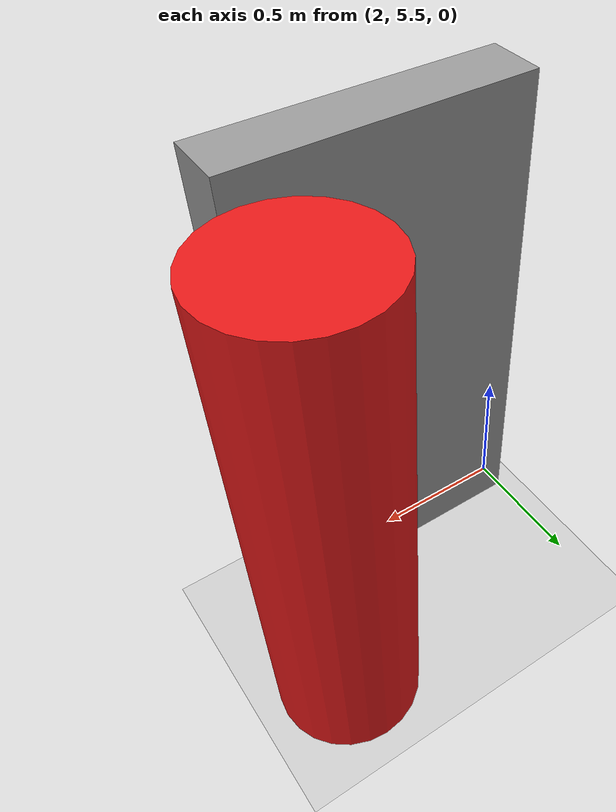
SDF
<?xml version="1.0" ?>
<sdf version="1.6">
  <world name="s5_occlusion">
    <physics name="1ms" type="ignored">
      <max_step_size>0.001</max_step_size>
      <real_time_factor>1.0</real_time_factor>
    </physics>
    <plugin filename="ignition-gazebo-physics-system" name="ignition::gazebo::systems::Physics"/>
    <plugin filename="ignition-gazebo-user-commands-system" name="ignition::gazebo::systems::UserCommands"/>
    <plugin filename="ignition-gazebo-scene-broadcaster-system" name="ignition::gazebo::systems::SceneBroadcaster"/>
    <plugin filename="ignition-gazebo-sensors-system" name="ignition::gazebo::systems::Sensors">
      <render_engine>ogre2</render_engine>
    </plugin>
    <light type="directional" name="sun">
      <cast_shadows>true</cast_shadows>
      <pose>0 0 10 0 0 0</pose>
      <diffuse>0.8 0.8 0.8 1</diffuse>
      <specular>0.2 0.2 0.2 1</specular>
      <attenuation>
        <range>1000</range>
        <constant>0.9</constant>
        <linear>0.01</linear>
        <quadratic>0.001</quadratic>
      </attenuation>
      <direction>-0.5 0.1 -0.9</direction>
    </light>
    <model name="ground_plane">
      <static>true</static>
      <link name="link">
        <collision name="collision">
          <geometry>
            <plane>
              <normal>0 0 1</normal>
              <size>100 100</size>
            </plane>
          </geometry>
        </collision>
        <visual name="visual">
          <geometry>
            <plane>
              <normal>0 0 1</normal>
              <size>100 100</size>
            </plane>
          </geometry>
          <material>
            <ambient>0.8 0.8 0.8 1</ambient>
            <diffuse>0.8 0.8 0.8 1</diffuse>
            <specular>0.8 0.8 0.8 1</specular>
          </material>
        </visual>
      </link>
    </model>

    <!-- Occluding Wall -->
    <model name="occluding_wall">
      <static>true</static>
      <pose>2.5 5.5 0.9 0 0 0</pose>
      <link name="link">
        <collision name="collision">
          <geometry>
            <box>
              <size>1.0 0.2 1.8</size>
            </box>
          </geometry>
        </collision>
        <visual name="visual">
          <geometry>
            <box>
              <size>1.0 0.2 1.8</size>
            </box>
          </geometry>
          <material>
            <ambient>0.6 0.6 0.6 1.0</ambient>
            <diffuse>0.6 0.6 0.6 1.0</diffuse>
          </material>
        </visual>
      </link>
    </model>

    <!-- Controlled Human Model -->
    <model name="s5_human">
      <static>false</static>
      <pose>3.0 6.0 0.9 0 0 0</pose>
      <link name="link">
        <inertial>
          <mass>80.0</mass>
          <inertia>
            <ixx>10.0</ixx> <ixy>0.0</ixy> <ixz>0.0</ixz>
            <iyy>10.0</iyy> <iyz>0.0</iyz> <izz>10.0</izz>
          </inertia>
        </inertial>
        <collision name="collision">
          <geometry>
            <cylinder>
              <radius>0.25</radius>
              <length>1.8</length>
            </cylinder>
          </geometry>
        </collision>
        <visual name="visual">
          <geometry>
            <cylinder>
              <radius>0.25</radius>
              <length>1.8</length>
            </cylinder>
          </geometry>
          <material>
            <ambient>0.9 0.1 0.1 1.0</ambient>
            <diffuse>0.9 0.1 0.1 1.0</diffuse>
          </material>
        </visual>
      </link>
      <plugin filename="ignition-gazebo-velocity-control-system" name="ignition::gazebo::systems::VelocityControl">
        <topic>/model/s5_human/cmd_vel</topic>
      </plugin>
    </model>
  </world>
</sdf>
